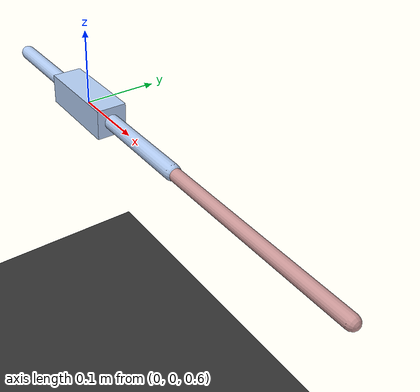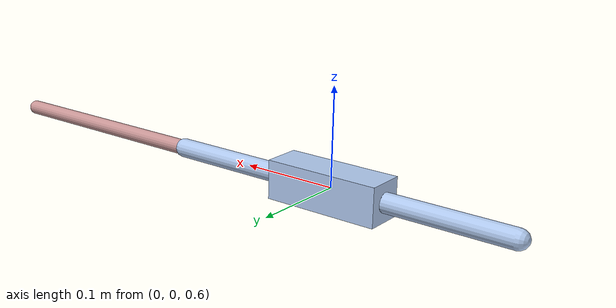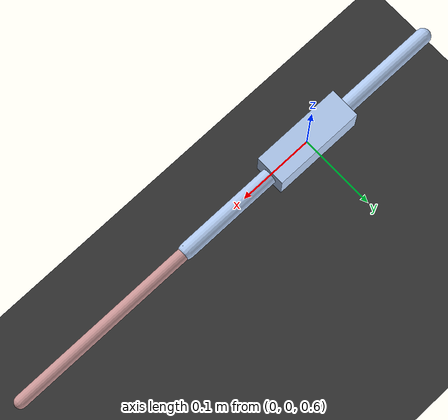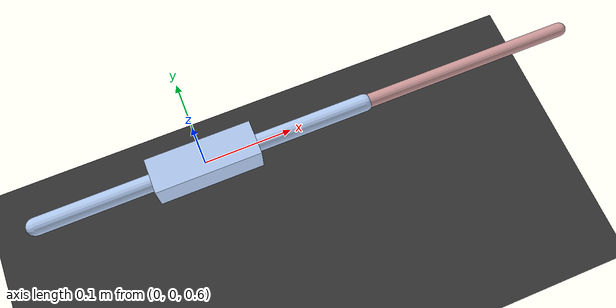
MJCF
<mujoco model="diamond_simple">
  <compiler angle="radian" inertiafromgeom="true"/>
  <option timestep="0.001" integrator="implicit"/>

  <default>
    <geom rgba="0.7 0.8 0.95 1" density="500"/>
    <joint damping="0.05"/>
  </default>

  <worldbody>
    <geom name="floor" type="plane" size="5 5 0.1" rgba="0.2 0.2 0.2 1"/>

    <body name="root" pos="0 0 0.6">
      <joint name="slide_x" type="slide" axis="1 0 0" range="-2 2"/>
      <joint name="slide_z" type="slide" axis="0 0 1" range="0 2"/>
      <joint name="hinge_y" type="hinge" axis="0 1 0" range="-0.2 0.2" damping="0.1"/>

      <body name="base" pos="0 0 0">
        <geom name="torso" type="box" size="0.06 0.02 0.02"/>
        <geom name="hip_bar" type="capsule" fromto="-0.06 0 0 0.06 0 0" size="0.01" rgba="0.5 0.6 0.8 1"/>

        <!-- Left upper link -->
        <body name="left_link" pos="-0.06 0 0">
          <joint name="hip_left" type="hinge" axis="0 -1 0" range="-3.14 3.14" damping="0.1"/>
          <geom name="left_link_geom" type="capsule" fromto="0 0 0 0.25 0 0" size="0.01"/>
          <site name="left_end" size="0.004" pos="0.25 0 0" rgba="1 0 0 1"/>

          <!-- Coupler link attached to left end -->
          <body name="coupler" pos="0.25 0 0">
            <joint name="coupler_joint" type="hinge" axis="0 -1 0" range="-3.14 3.14" damping="0.1"/>
            <geom name="coupler_geom" type="capsule" fromto="0 0 0 0.25 0 0" size="0.008" rgba="0.8 0.6 0.6 1"/>
            <site name="coupler_end" size="0.004" pos="0.25 0 0" rgba="1 0 0 1"/>
          </body>
        </body>

        <!-- Right upper link -->
        <body name="right_link" pos="0.06 0 0">
          <joint name="hip_right" type="hinge" axis="0 -1 0" range="-3.14 3.14" damping="0.1"/>
          <geom name="right_link_geom" type="capsule" fromto="0 0 0 -0.25 0 0" size="0.01"/>
          <site name="right_end" size="0.004" pos="-0.25 0 0" rgba="1 0 0 1"/>
        </body>
      </body>
    </body>
  </worldbody>

  <equality>
    <connect name="diamond_link" site1="coupler_end" site2="right_end"/>
  </equality>

  <actuator>
    <motor name="hip_left" joint="hip_left" ctrlrange="-44 44"/>
    <motor name="hip_right" joint="hip_right" ctrlrange="-44 44"/>
  </actuator>
</mujoco>
